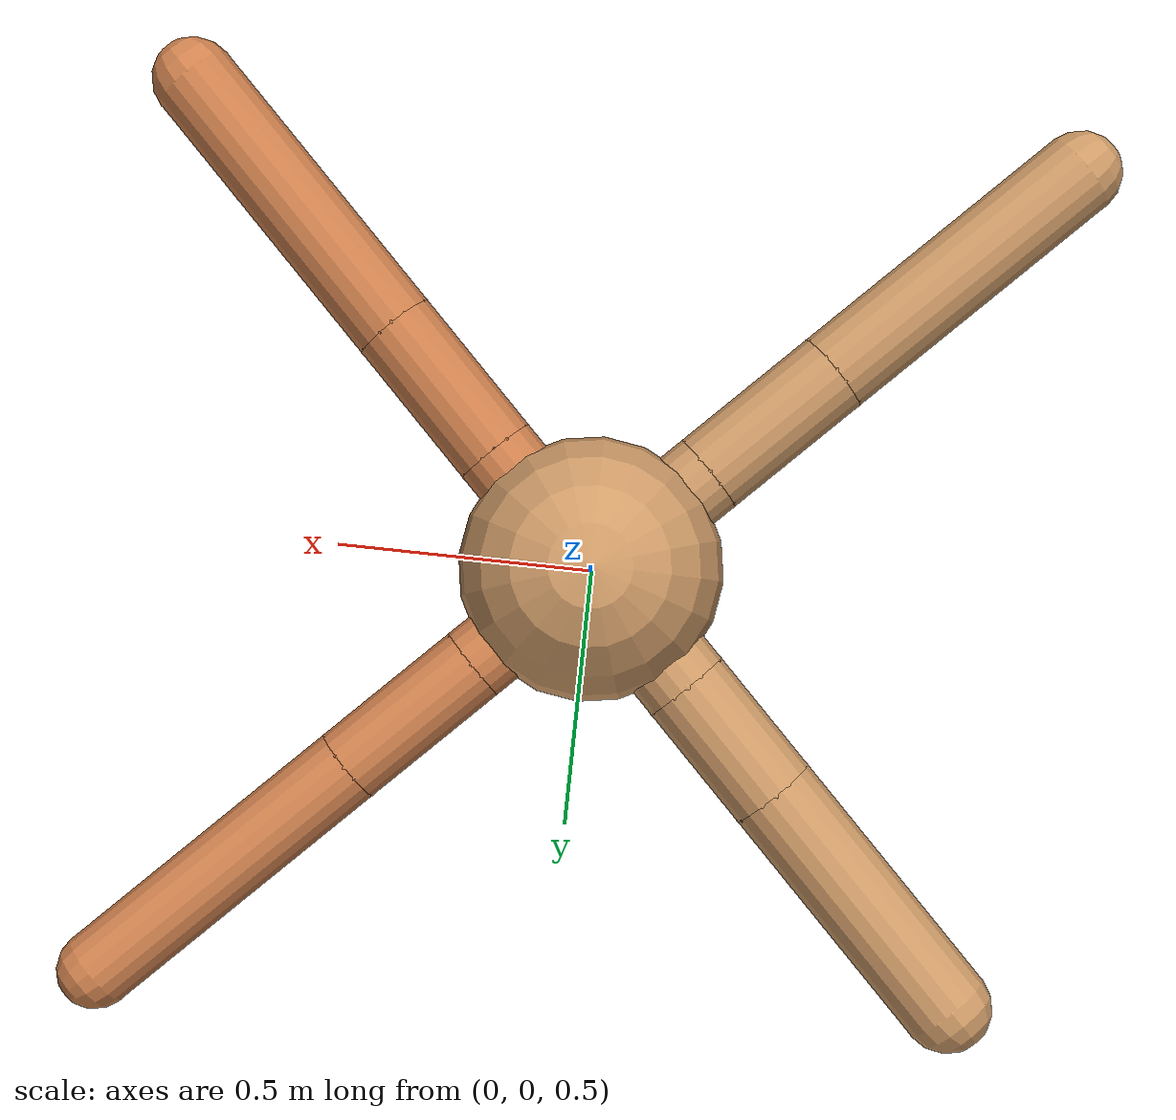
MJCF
<?xml version="1.0" ?>
<mujoco model="ant">

	<compiler angle="degree" coordinate="local" inertiafromgeom="true"/>

	<option integrator="RK4" timestep="0.01"/>

	<custom>

		<numeric data="0.0 0.0 0.55 1.0 0.0 0.0 0.0 0.0 1.0 0.0 -1.0 0.0 -1.0 0.0 1.0" name="init_qpos"/>

	</custom>

	<default>

		<joint armature="1" damping="1" limited="true"/>

		<geom conaffinity="0" condim="3" density="5.0" friction="1.5 0.1 0.1" margin="0.01" rgba="0.8 0.6 0.4 1"/>

	</default>

	<worldbody>

		<body name="torso" pos="0 0 0.75">

			<geom name="torso_geom" pos="0 0 0" size="0.2487829465092946" type="sphere"/>

			<!--joint armature="0" damping="0" limited="false" margin="0.01" name="root" pos="0 0 0" type="free"/-->

			<body name="front_left_leg" pos="0 0 0">

				<geom fromto="0 0 0 0.2 0.2 0" name="aux_1_geom" size="0.07353707984868103" type="capsule" rgba=".8 .5 .3 1"/>

				<body name="aux_1" pos="0.2 0.2 0">

					<joint axis="0 0 1" name="hip_1" pos="0.0 0.0 0.0" range="-40 40" type="hinge"/>

					<geom fromto="0 0 0 0.21252408237415638 0.21252408237415638 0" name="left_leg_geom" size="0.07353707984868103" type="capsule" rgba=".8 .5 .3 1"/>

					<body pos="0.21252408237415638 0.21252408237415638 0" name="front_left_foot">

						<joint axis="-1 1 0" name="ankle_1" pos="0.0 0.0 0.0" range="30 100" type="hinge"/>

						<geom fromto="0 0 0 0.42504816474831275 0.42504816474831275 0" name="left_ankle_geom" size="0.07353707984868103" type="capsule" rgba=".8 .5 .3 1"/>

					</body>

				</body>

			</body>

			<body name="front_right_leg" pos="0 0 0">

				<geom fromto="0 0 0 -0.2 0.2 0" name="aux_2_geom" size="0.08502741752911647" type="capsule"/>

				<body name="aux_2" pos="-0.2 0.2 0">

					<joint axis="0 0 1" name="hip_2" pos="0.0 0.0 0.0" range="-40 40" type="hinge"/>

					<geom fromto="0 0 0 -0.18095056654092756 0.18095056654092756 0" name="right_leg_geom" size="0.08502741752911647" type="capsule"/>

					<body pos="-0.18095056654092756 0.18095056654092756 0" name="front_right_foot">

						<joint axis="1 1 0" name="ankle_2" pos="0.0 0.0 0.0" range="-100 -30" type="hinge"/>

						<geom fromto="0 0 0 -0.3619011330818551 0.3619011330818551 0" name="right_ankle_geom" size="0.08502741752911647" type="capsule"/>

					</body>

				</body>

			</body>

			<body name="left_back_leg" pos="0 0 0">

				<geom fromto="0 0 0 -0.2 -0.2 0" name="aux_3_geom" size="0.08016774209208873" type="capsule"/>

				<body name="aux_3" pos="-0.2 -0.2 0">

					<joint axis="0 0 1" name="hip_3" pos="0.0 0.0 0.0" range="-40 40" type="hinge"/>

					<geom fromto="0 0 0 -0.21190452445218524 -0.21190452445218524 0" name="back_leg_geom" size="0.08016774209208873" type="capsule"/>

					<body pos="-0.21190452445218524 -0.21190452445218524 0" name="left_back_foot">

						<joint axis="-1 1 0" name="ankle_3" pos="0.0 0.0 0.0" range="-100 -30" type="hinge"/>

						<geom fromto="0 0 0 -0.4238090489043705 -0.4238090489043705 0" name="third_ankle_geom" size="0.08016774209208873" type="capsule"/>

					</body>

				</body>

			</body>

			<body name="right_back_leg" pos="0 0 0">

				<geom fromto="0 0 0 0.2 -0.2 0" name="aux_4_geom" size="0.07971479595994825" type="capsule" rgba=".8 .5 .3 1"/>

				<body name="aux_4" pos="0.2 -0.2 0">

					<joint axis="0 0 1" name="hip_4" pos="0.0 0.0 0.0" range="-40 40" type="hinge"/>

					<geom fromto="0 0 0 0.21283402152845676 -0.21283402152845676 0" name="rightback_leg_geom" size="0.07971479595994825" type="capsule" rgba=".8 .5 .3 1"/>

					<body pos="0.21283402152845676 -0.21283402152845676 0" name="right_back_foot">

						<joint axis="1 1 0" name="ankle_4" pos="0.0 0.0 0.0" range="30 100" type="hinge"/>

						<geom fromto="0 0 0 0.4256680430569135 -0.4256680430569135 0" name="fourth_ankle_geom" size="0.07971479595994825" type="capsule" rgba=".8 .5 .3 1"/>

					</body>

				</body>

			</body>

		</body>

	</worldbody>

	<actuator>

		<motor ctrllimited="true" ctrlrange="-1.0 1.0" joint="hip_4" gear="150"/>

		<motor ctrllimited="true" ctrlrange="-1.0 1.0" joint="ankle_4" gear="150"/>

		<motor ctrllimited="true" ctrlrange="-1.0 1.0" joint="hip_1" gear="150"/>

		<motor ctrllimited="true" ctrlrange="-1.0 1.0" joint="ankle_1" gear="150"/>

		<motor ctrllimited="true" ctrlrange="-1.0 1.0" joint="hip_2" gear="150"/>

		<motor ctrllimited="true" ctrlrange="-1.0 1.0" joint="ankle_2" gear="150"/>

		<motor ctrllimited="true" ctrlrange="-1.0 1.0" joint="hip_3" gear="150"/>

		<motor ctrllimited="true" ctrlrange="-1.0 1.0" joint="ankle_3" gear="150"/>

	</actuator>

</mujoco>
